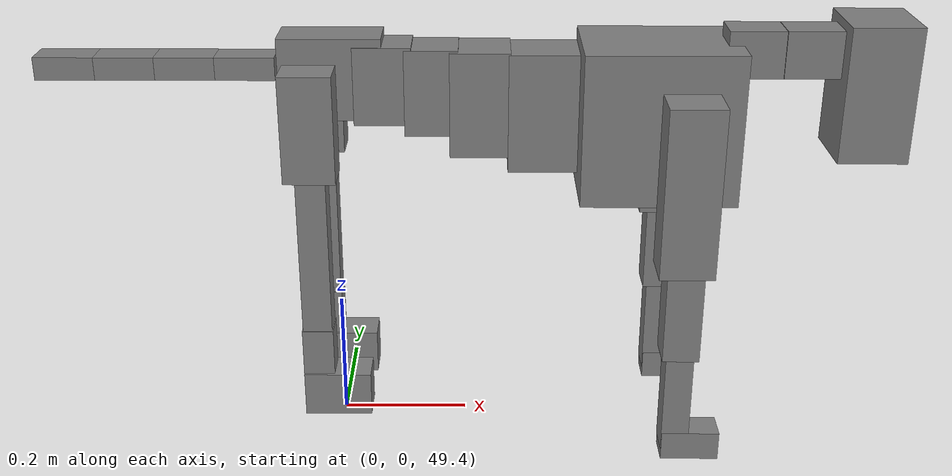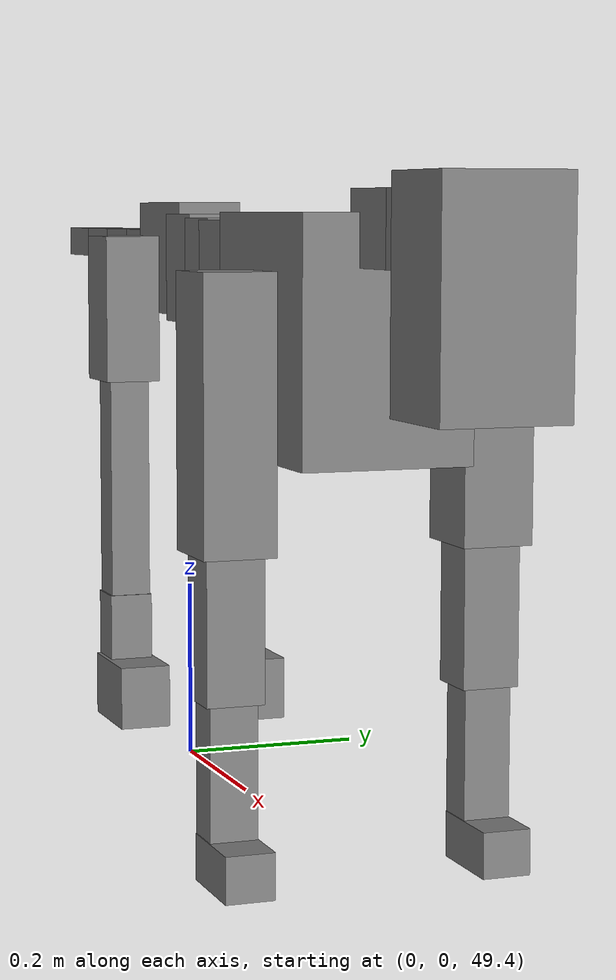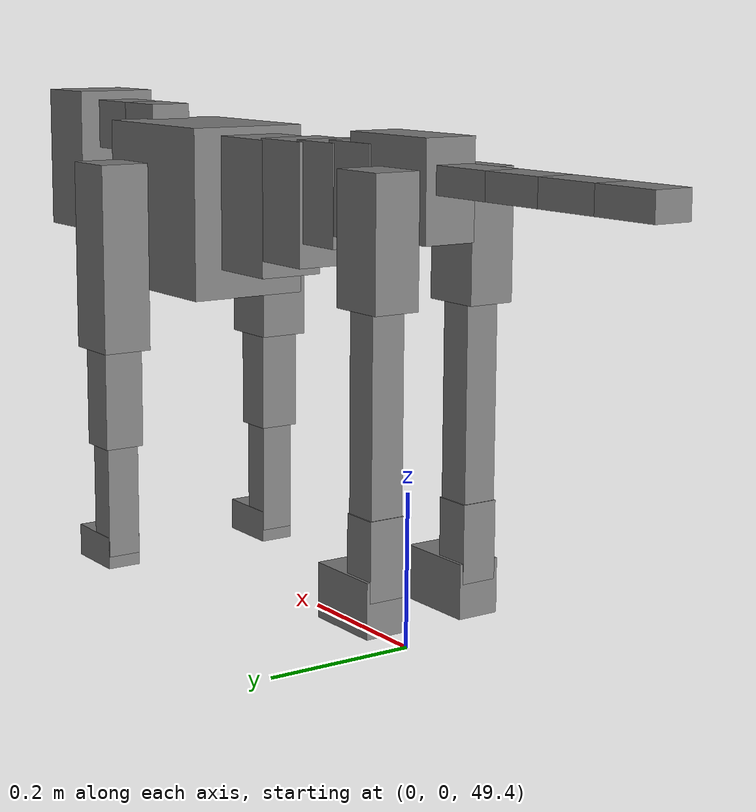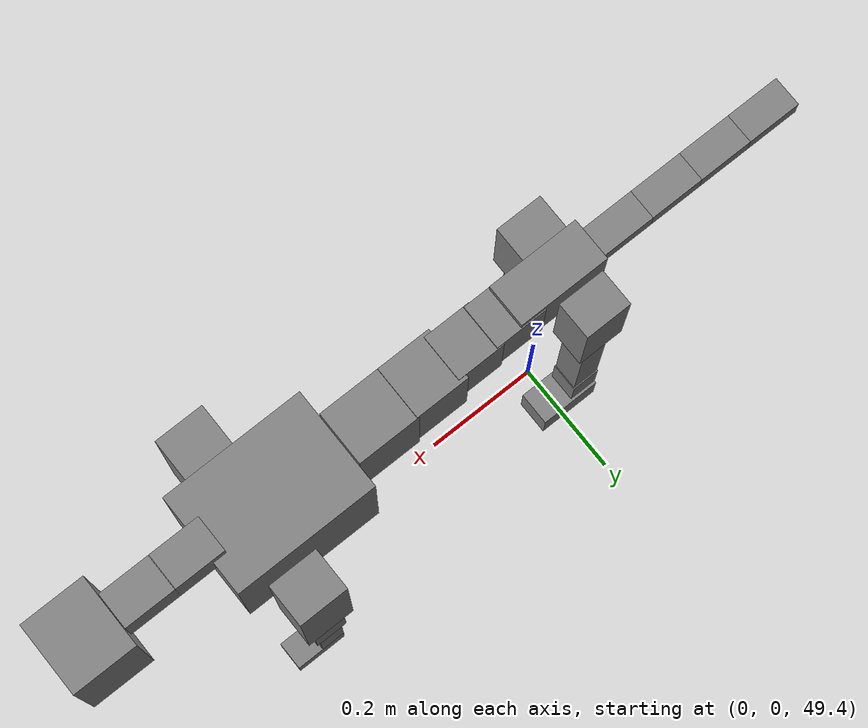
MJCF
<mujoco model="dog">

    <default>
        <joint armature="0.02" stiffness="1" damping="0.2" limited="true"/>
        <geom condim="3" friction="1 0.05 0.05" margin="0.01"/>
        <motor ctrllimited="true" ctrlrange="-1.0 1.0" forcelimited="true" gear="50"/>
    </default>

    <compiler inertiafromgeom="true" angle="radian"/>

    <option timestep="0.016" iterations="50" tolerance="1e-10" solver="Newton" jacobian="dense" cone="pyramidal"/>

    <size nconmax="20000" njmax="60000" nstack="5000000"/>
    <visual>
        <map force="0.1" zfar="30"/>
        <rgba haze="0.15 0.25 0.35 1"/>
        <quality shadowsize="2048"/>
        <global offwidth="800" offheight="800"/>
    </visual>

    <asset>
        <texture type="skybox" builtin="gradient" rgb1="0.3 0.5 0.7" rgb2="0 0 0" width="512" height="512"/>
        <texture name="texplane" type="2d" builtin="checker" rgb1=".2 .3 .4" rgb2=".1 0.15 0.2" width="512" height="512"
                 mark="cross" markrgb=".8 .8 .8"/>
        <texture name="texgeom" type="cube" builtin="flat" mark="cross" width="127" height="1278" rgb1="0.8 0.6 0.4"
                 rgb2="0.8 0.6 0.4" markrgb="1 1 1" random="0.01"/>

        <material name="matplane" reflectance="0.3" texture="texplane" texrepeat="1 1" texuniform="true"/>
        <material name="matgeom" texture="texgeom" texuniform="true" rgba="0.8 0.6 .4 1"/>
    </asset>

    <worldbody>
        <geom name="floor" pos="0 0 0" size="0 0 .25" type="plane" material="matplane" condim="3"/>

        <light directional="false" diffuse=".2 .2 .2" specular="0 0 0" pos="0 0 5" dir="0 0 -1" castshadow="false"/>
        <light mode="targetbodycom" target="torso" directional="false" diffuse=".8 .8 .8" specular="0.3 0.3 0.3"
               pos="0 0 4.0" dir="0 0 -1"/>

        <body name="root" pos="0 0 50">
            <freejoint name="root_1"/>
            <geom type="box" pos="0 0 -0.02" size="0.0774  0.0358  0.063" density="2030"/>

            <body name="spine1" pos="0.054 0 0">
                <joint name="spine1_y" axis="0 1 0" range="0 0.7" limited="true"/>
                <geom type="box" pos="0.02375 0 -0.03" size="0.04375  0.0375  0.05985" density="2030"/>

                <body name="spine2" pos="0.0612 0 0">
                    <joint name="spine2_y" axis="0 1 0" range="-0.15 0.15" limited="true"/>
                    <geom type="box" pos="0.03555  0  -0.04" size="0.04055  0.039  0.06615" density="2030"/>

                    <body name="spine3" pos="0.0730 0 0">
                        <joint name="spine3_y" axis="0 1 0" range="-0.15 0.15" limited="true"/>
                        <geom type="box" pos="0.03555  0  -0.057" size="0.04555  0.0445  0.081" density="2030"/>

                        <body name="spine4" pos="0.0780 0 0">
                            <joint name="spine4_y" axis="0 1 0" range="-0.15 0.15" limited="true"/>
                            <geom type="box" pos="0.05265  0  -0.07" size="0.05265  0.045  0.09135" density="2030"/>

                            <body name="torso" pos="0.1082 0 0">
                                <joint name="torso_y" axis="0 1 0" range="-0.15 0.15" limited="true"/>
                                <geom type="box" pos="0.11925  0  -0.085" size="0.11925  0.085  0.11745"
                                      density="2030"/>

                                <body name="neck1" pos="0.2160  0   0.0180">
                                    <joint name="neck1_y" axis="0 1 0" range="-1.2  -1" limited="true"/>
                                    <geom type="box" pos="0.0423  0  0" size="0.0423  0.03  0.036" density="2325"/>

                                    <body name="neck2" pos="0.0853  0  0">
                                        <joint name="neck2_y" axis="0 1 0" range="0.1  0" limited="true"/>
                                        <geom type="box" pos="0.0423  0  0" size="0.0423  0.03  0.036" density="2325"/>

                                        <body name="head" pos="0.0853  0  0">
                                            <joint name="head_y" axis="0 1 0" range="-0.3  -0.2" limited="true"/>
                                            <geom type="box" pos="0.0531  0  -0.055" size="0.0531  0.06  0.1044"
                                                  density="4030"/>

                                        </body>
                                    </body>
                                </body>

                                <body name="front_shoulder" pos="0.156  0   -0.0480">
                                    <joint name="front_shoulder_y" axis="0 1 0" range="-1 1.5" limited="true"/>
                                    <geom type="box" pos="0 0.13 -0.1055" size="0.0417  0.0356  0.1321" density="1158"/>
                                    <geom type="box" pos="0 -0.13 -0.1055" size="0.0417  0.0356  0.1321"
                                          density="1158"/>

                                    <body name="front_elbow" pos="0  0  -0.2110">
                                        <joint name="front_elbow_y" axis="0 1 0" range="-2 0" limited="true"/>
                                        <geom type="box" pos="0 0.13 -0.0835" size="0.0282  0.0288  0.0835"
                                              density="1081"/>
                                        <geom type="box" pos="0 -0.13 -0.0835" size="0.0282  0.0288  0.0835"
                                              density="1081"/>

                                        <body name="front_wrist" pos="0  0  -0.1670">
                                            <joint name="front_wrist_y" axis="0 1 0" range="-0.2 0" limited="true"/>
                                            <geom type="box" pos="0 0.13 -0.0730" size="0.0214  0.0238  0.0861"
                                                  density="1664"/>
                                            <geom type="box" pos="0 -0.13 -0.0730" size="0.0214  0.0238  0.0861"
                                                  density="1664"/>

                                            <body name="front_finger_end" pos="0  0  -0.1459">
                                                <joint name="front_finger_y" axis="0 1 0" range="-0.4 1"
                                                       limited="true"/>
                                                <geom type="box" pos="0.0246  0.13  -0.0079"
                                                      size="0.0450  0.0246  0.0229" density="1515"/>
                                                <geom type="box" pos="0.0246  -0.13  -0.0079"
                                                      size="0.0450  0.0246  0.0229" density="1515"/>

                                            </body>

                                        </body>
                                    </body>
                                </body>

                            </body>
                        </body>
                    </body>
                </body>
            </body>

            <body name="back_hip" pos="-0.03 0 -0.018">
                <joint name="back_hip_y" axis="0 1 0" range="-1.5 0.3" limited="true"/>
                <geom type="box" pos="0 0.07 -0.0600" size="0.0396  0.0311  0.0828" density="1154"/>
                <geom type="box" pos="0 -0.07 -0.0600" size="0.0396  0.0311  0.0828" density="1154"/>

                <body name="back_knee" pos="0  0  -0.1199">
                    <joint name="back_knee_y" axis="0 1 0" range="0 2.8" limited="true"/>
                    <geom type="box" pos="0 0.07 -0.1419" size="0.0229  0.0226  0.1574" density="1227"/>
                    <geom type="box" pos="0 -0.07 -0.1419" size="0.0229  0.0226  0.1574" density="1227"/>

                    <body name="back_ankle" pos="0  0  -0.2837">
                        <joint name="back_ankle_y" axis="0 1 0" range="-2.2 0" limited="true"/>
                        <geom type="box" pos="0 0.07 -0.0393" size="0.0243  0.0243  0.0506" density="1284"/>
                        <geom type="box" pos="0 -0.07 -0.0393" size="0.0243  0.0243  0.0506" density="1284"/>

                        <body name="back_toe_end" pos="0  0  -0.0786">
                            <joint name="back_toe_y" axis="0 1 0" range="-0.4 1" limited="true"/>
                            <geom type="box" pos="0.0287  0.07  -0.0204" size="0.0526  0.0287  0.0354" density="1515"/>
                            <geom type="box" pos="0.0287  -0.07  -0.0204" size="0.0526  0.0287  0.0354" density="1515"/>

                        </body>
                    </body>
                </body>
            </body>

            <body name="tail1" pos="-0.074 0 -0.006">
                <joint name="tail1_y" axis="0 1 0" range="-0.2 0.2" limited="true"/>
                <geom type="box" pos="-0.0536  0  0" size="0.045  0.025  0.0175" density="1587"/>

                <body name="tail2" pos="-0.09 0 0">
                    <joint name="tail2_y" axis="0 1 0" range="-0.2 0.2" limited="true"/>
                    <geom type="box" pos="-0.0536  0  0" size="0.045  0.025  0.0175" density="1587"/>

                    <body name="tail3" pos="-0.09 0 0">
                        <joint name="tail3_y" axis="0 1 0" range="-0.2 0.2" limited="true"/>
                        <geom type="box" pos="-0.0536  0  0" size="0.045  0.025  0.0175" density="1587"/>

                        <body name="tail4" pos="-0.09 0 0">
                            <joint name="tail4_y" axis="0 1 0" range="-0.2 0.2" limited="true"/>
                            <geom type="box" pos="-0.0536  0  0" size="0.045  0.025  0.0175" density="1587"/>

                        </body>
                    </body>
                </body>
            </body>
        </body>
    </worldbody>

    <actuator>
        <motor joint="spine1_y" forcerange="-150 150     "/>
        <motor joint="spine2_y" forcerange="-150 150     "/>
        <motor joint="spine3_y" forcerange="-150 150     "/>
        <motor joint="spine4_y" forcerange="-150 150     "/>
        <motor joint="torso_y" forcerange="-150 150     "/>
        <motor joint="neck1_y" forcerange="-100 100       "/>
        <motor joint="neck2_y" forcerange="-100 100       "/>
        <motor joint="head_y" forcerange="-150 150       "/>
        <motor joint="front_shoulder_y" forcerange="-149.84 187.71"/>
        <motor joint="front_elbow_y" forcerange="-172.54 136.94"/>
        <motor joint="front_wrist_y" forcerange="-63.65 126.71"/>
        <motor joint="front_finger_y" forcerange="-42.08 48.97"/>
        <motor joint="back_hip_y" forcerange="-274.71 339.53"/>
        <motor joint="back_knee_y" forcerange="-261.87 266.15"/>
        <motor joint="back_angle_y" forcerange="-136.87 151.77"/>
        <motor joint="back_toe_y" forcerange="-114.43 35.19"/>
        <motor joint="tail1_y" forcerange="-50 50     "/>
        <motor joint="tail2_y" forcerange="-50 50     "/>
        <motor joint="tail3_y" forcerange="-50 50     "/>
        <motor joint="tail4_y" forcerange="-50 50     "/>
    </actuator>
</mujoco>
